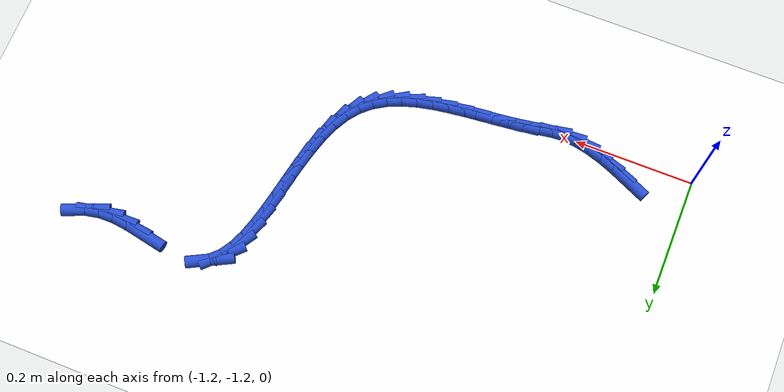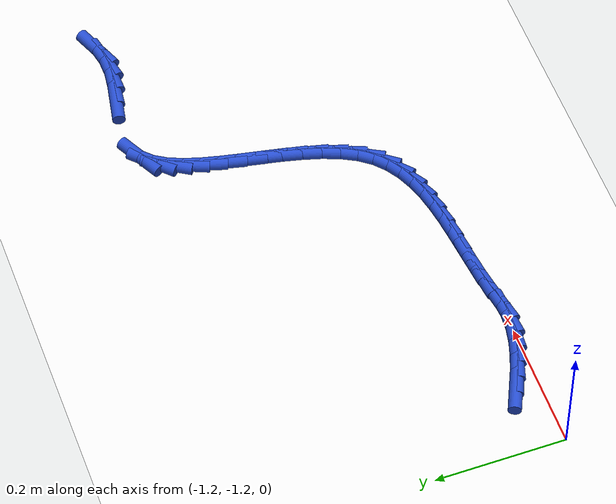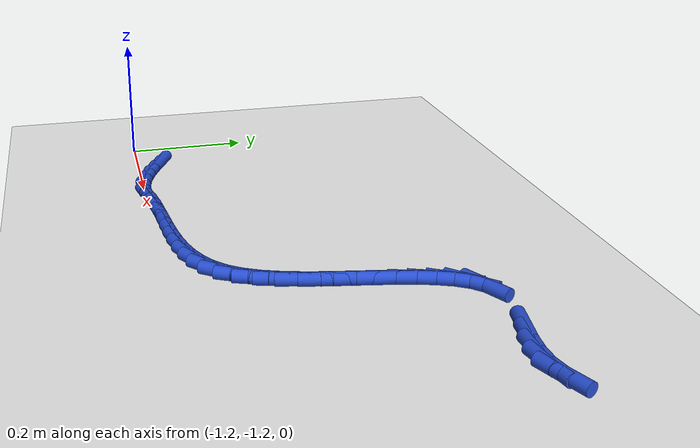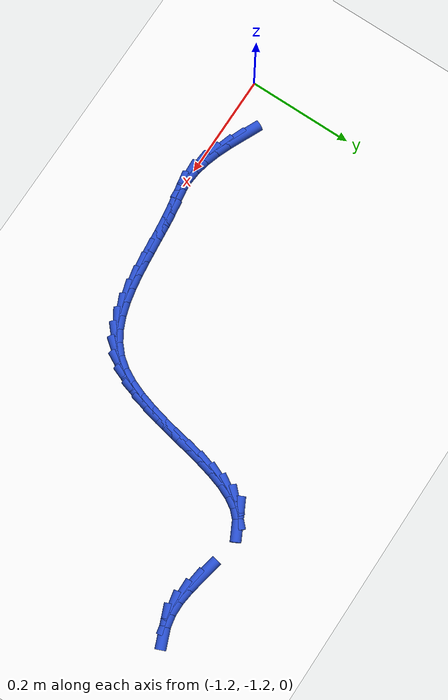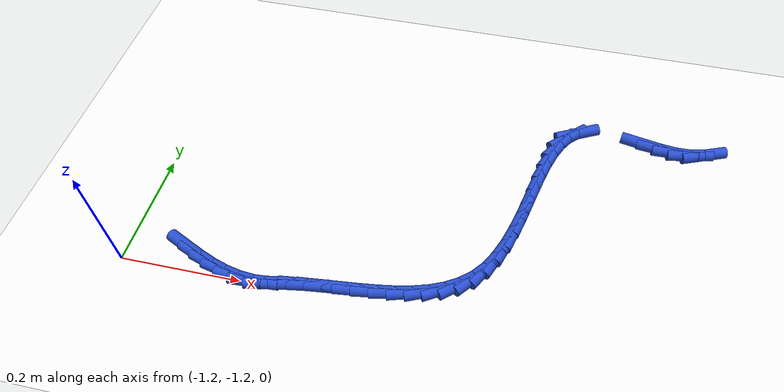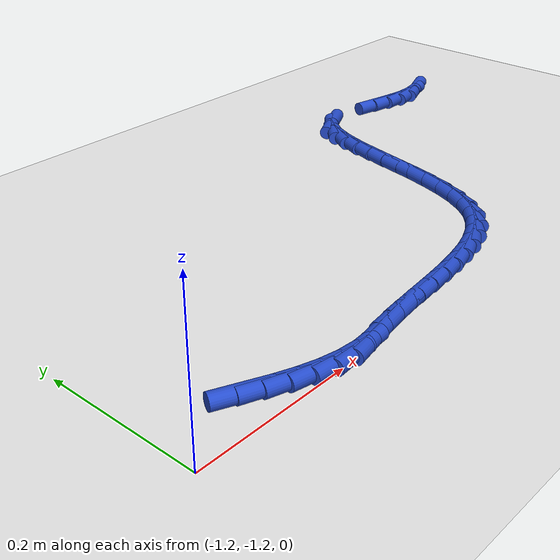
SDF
<sdf version="1.6">
 <world name="default">
  <model name="ground_plane">
   <static>1</static>
   <link name="link">
    <collision name="collision">
     <geometry><plane><normal>0 0 1</normal><size>100 100</size></plane></geometry>
     <surface><friction><ode><mu>100</mu><mu2>50</mu2></ode></friction></surface>
    </collision>
    <visual name="visual">
     <cast_shadows>0</cast_shadows>
     <geometry><plane><normal>0 0 1</normal><size>100 100</size></plane></geometry>
     <material>
      <script><uri>file://media/materials/scripts/gazebo.material</uri><name>Gazebo/WhiteGlow</name></script>
     </material>
    </visual>
   </link>
  </model>
  <model name="line">
   <link name="link_218">
    <pose>-1.098816212058222 -1.1635017872347682 0.01 0 1.57 -0.4315444248721359</pose>
    <collision name="collision">
     <geometry><cylinder><radius>0.01</radius><length>0.08</length></cylinder></geometry>
    </collision>
    <visual name="visual">
     <material>
      <script><name>Gazebo/Blue</name><uri>file://media/materials/scripts/gazebo.material</uri></script>
     </material>
     <geometry><cylinder><radius>0.01</radius><length>0.08</length></cylinder></geometry>
    </visual>
   </link>
   <link name="link_219">
    <pose>-1.0742911238119166 -1.1747953848198356 0.01 0 1.57 -0.38162803061026823</pose>
    <collision name="collision">
     <geometry><cylinder><radius>0.01</radius><length>0.08</length></cylinder></geometry>
    </collision>
    <visual name="visual">
     <material>
      <script><name>Gazebo/Blue</name><uri>file://media/materials/scripts/gazebo.material</uri></script>
     </material>
     <geometry><cylinder><radius>0.01</radius><length>0.08</length></cylinder></geometry>
    </visual>
   </link>
   <link name="link_220">
    <pose>-1.0497254532334863 -1.1846536302491382 0.01 0 1.57 -0.3078848783195004</pose>
    <collision name="collision">
     <geometry><cylinder><radius>0.01</radius><length>0.08</length></cylinder></geometry>
    </collision>
    <visual name="visual">
     <material>
      <script><name>Gazebo/Blue</name><uri>file://media/materials/scripts/gazebo.material</uri></script>
     </material>
     <geometry><cylinder><radius>0.01</radius><length>0.08</length></cylinder></geometry>
    </visual>
   </link>
   <link name="link_221">
    <pose>-1.0250597635346874 -1.1924972437741892 0.01 0 1.57 -0.2083969248805636</pose>
    <collision name="collision">
     <geometry><cylinder><radius>0.01</radius><length>0.08</length></cylinder></geometry>
    </collision>
    <visual name="visual">
     <material>
      <script><name>Gazebo/Blue</name><uri>file://media/materials/scripts/gazebo.material</uri></script>
     </material>
     <geometry><cylinder><radius>0.01</radius><length>0.08</length></cylinder></geometry>
    </visual>
   </link>
   <link name="link_222">
    <pose>-1.0002346179272763 -1.1977469456465017 0.01 0 1.57 -0.08272513613194435</pose>
    <collision name="collision">
     <geometry><cylinder><radius>0.01</radius><length>0.08</length></cylinder></geometry>
    </collision>
    <visual name="visual">
     <material>
      <script><name>Gazebo/Blue</name><uri>file://media/materials/scripts/gazebo.material</uri></script>
     </material>
     <geometry><cylinder><radius>0.01</radius><length>0.08</length></cylinder></geometry>
    </visual>
   </link>
   <link name="link_223">
    <pose>-0.9751905796230091 -1.1998234561175882 0.01 0 1.57 0.0660886039021946</pose>
    <collision name="collision">
     <geometry><cylinder><radius>0.01</radius><length>0.08</length></cylinder></geometry>
    </collision>
    <visual name="visual">
     <material>
      <script><name>Gazebo/Blue</name><uri>file://media/materials/scripts/gazebo.material</uri></script>
     </material>
     <geometry><cylinder><radius>0.01</radius><length>0.08</length></cylinder></geometry>
    </visual>
   </link>
   <link name="link_224">
    <pose>-0.9498682118336421 -1.198147495438962 0.01 0 1.57 0.18501400527043615</pose>
    <collision name="collision">
     <geometry><cylinder><radius>0.01</radius><length>0.08</length></cylinder></geometry>
    </collision>
    <visual name="visual">
     <material>
      <script><name>Gazebo/Blue</name><uri>file://media/materials/scripts/gazebo.material</uri></script>
     </material>
     <geometry><cylinder><radius>0.01</radius><length>0.08</length></cylinder></geometry>
    </visual>
   </link>
   <link name="link_225">
    <pose>-0.9240349536873695 -1.193312689146798 0.01 0 1.57 0.15475786522528964</pose>
    <collision name="collision">
     <geometry><cylinder><radius>0.01</radius><length>0.08</length></cylinder></geometry>
    </collision>
    <visual name="visual">
     <material>
      <script><name>Gazebo/Blue</name><uri>file://media/materials/scripts/gazebo.material</uri></script>
     </material>
     <geometry><cylinder><radius>0.01</radius><length>0.08</length></cylinder></geometry>
    </visual>
   </link>
   <link name="link_226">
    <pose>-0.8971002868756933 -1.189110738357532 0.01 0 1.57 0.11705539240426004</pose>
    <collision name="collision">
     <geometry><cylinder><radius>0.01</radius><length>0.08</length></cylinder></geometry>
    </collision>
    <visual name="visual">
     <material>
      <script><name>Gazebo/Blue</name><uri>file://media/materials/scripts/gazebo.material</uri></script>
     </material>
     <geometry><cylinder><radius>0.01</radius><length>0.08</length></cylinder></geometry>
    </visual>
   </link>
   <link name="link_227">
    <pose>-0.8692866613388929 -1.1858400515641836 0.01 0 1.57 0.09915759661996276</pose>
    <collision name="collision">
     <geometry><cylinder><radius>0.01</radius><length>0.08</length></cylinder></geometry>
    </collision>
    <visual name="visual">
     <material>
      <script><name>Gazebo/Blue</name><uri>file://media/materials/scripts/gazebo.material</uri></script>
     </material>
     <geometry><cylinder><radius>0.01</radius><length>0.08</length></cylinder></geometry>
    </visual>
   </link>
   <link name="link_228">
    <pose>-0.84097839155298 -1.1830238356187113 0.01 0 1.57 0.09955292335106708</pose>
    <collision name="collision">
     <geometry><cylinder><radius>0.01</radius><length>0.08</length></cylinder></geometry>
    </collision>
    <visual name="visual">
     <material>
      <script><name>Gazebo/Blue</name><uri>file://media/materials/scripts/gazebo.material</uri></script>
     </material>
     <geometry><cylinder><radius>0.01</radius><length>0.08</length></cylinder></geometry>
    </visual>
   </link>
   <link name="link_229">
    <pose>-0.8125597919939674 -1.1801852973730735 0.01 0 1.57 0.11803814381828012</pose>
    <collision name="collision">
     <geometry><cylinder><radius>0.01</radius><length>0.08</length></cylinder></geometry>
    </collision>
    <visual name="visual">
     <material>
      <script><name>Gazebo/Blue</name><uri>file://media/materials/scripts/gazebo.material</uri></script>
     </material>
     <geometry><cylinder><radius>0.01</radius><length>0.08</length></cylinder></geometry>
    </visual>
   </link>
   <link name="link_230">
    <pose>-0.7844151771378685 -1.1768476436792297 0.01 0 1.57 0.15566525242233029</pose>
    <collision name="collision">
     <geometry><cylinder><radius>0.01</radius><length>0.08</length></cylinder></geometry>
    </collision>
    <visual name="visual">
     <material>
      <script><name>Gazebo/Blue</name><uri>file://media/materials/scripts/gazebo.material</uri></script>
     </material>
     <geometry><cylinder><radius>0.01</radius><length>0.08</length></cylinder></geometry>
    </visual>
   </link>
   <link name="link_231">
    <pose>-0.7569288614606956 -1.1725340813891378 0.01 0 1.57 0.21469732313783532</pose>
    <collision name="collision">
     <geometry><cylinder><radius>0.01</radius><length>0.08</length></cylinder></geometry>
    </collision>
    <visual name="visual">
     <material>
      <script><name>Gazebo/Blue</name><uri>file://media/materials/scripts/gazebo.material</uri></script>
     </material>
     <geometry><cylinder><radius>0.01</radius><length>0.08</length></cylinder></geometry>
    </visual>
   </link>
   <link name="link_232">
    <pose>-0.7304851594384619 -1.1667678173547578 0.01 0 1.57 0.2984364893125805</pose>
    <collision name="collision">
     <geometry><cylinder><radius>0.01</radius><length>0.08</length></cylinder></geometry>
    </collision>
    <visual name="visual">
     <material>
      <script><name>Gazebo/Blue</name><uri>file://media/materials/scripts/gazebo.material</uri></script>
     </material>
     <geometry><cylinder><radius>0.01</radius><length>0.08</length></cylinder></geometry>
    </visual>
   </link>
   <link name="link_233">
    <pose>-0.7054683855471805 -1.159072058428047 0.01 0 1.57 0.4105869993699144</pose>
    <collision name="collision">
     <geometry><cylinder><radius>0.01</radius><length>0.08</length></cylinder></geometry>
    </collision>
    <visual name="visual">
     <material>
      <script><name>Gazebo/Blue</name><uri>file://media/materials/scripts/gazebo.material</uri></script>
     </material>
     <geometry><cylinder><radius>0.01</radius><length>0.08</length></cylinder></geometry>
    </visual>
   </link>
   <link name="link_234">
    <pose>-0.6822628542628628 -1.1489700114609647 0.01 0 1.57 0.5535829690011581</pose>
    <collision name="collision">
     <geometry><cylinder><radius>0.01</radius><length>0.08</length></cylinder></geometry>
    </collision>
    <visual name="visual">
     <material>
      <script><name>Gazebo/Blue</name><uri>file://media/materials/scripts/gazebo.material</uri></script>
     </material>
     <geometry><cylinder><radius>0.01</radius><length>0.08</length></cylinder></geometry>
    </visual>
   </link>
   <link name="link_235">
    <pose>-0.6612528800615219 -1.1359848833054695 0.01 0 1.57 0.7255102990827947</pose>
    <collision name="collision">
     <geometry><cylinder><radius>0.01</radius><length>0.08</length></cylinder></geometry>
    </collision>
    <visual name="visual">
     <material>
      <script><name>Gazebo/Blue</name><uri>file://media/materials/scripts/gazebo.material</uri></script>
     </material>
     <geometry><cylinder><radius>0.01</radius><length>0.08</length></cylinder></geometry>
    </visual>
   </link>
   <link name="link_236">
    <pose>-0.6428227774191717 -1.1196398808135206 0.01 0 1.57 0.9152244640991074</pose>
    <collision name="collision">
     <geometry><cylinder><radius>0.01</radius><length>0.08</length></cylinder></geometry>
    </collision>
    <visual name="visual">
     <material>
      <script><name>Gazebo/Blue</name><uri>file://media/materials/scripts/gazebo.material</uri></script>
     </material>
     <geometry><cylinder><radius>0.01</radius><length>0.08</length></cylinder></geometry>
    </visual>
   </link>
   <link name="link_237">
    <pose>-0.6273303858108608 -1.0994946131046823 0.01 0 1.57 1.081231099242293</pose>
    <collision name="collision">
     <geometry><cylinder><radius>0.01</radius><length>0.08</length></cylinder></geometry>
    </collision>
    <visual name="visual">
     <material>
      <script><name>Gazebo/Blue</name><uri>file://media/materials/scripts/gazebo.material</uri></script>
     </material>
     <geometry><cylinder><radius>0.01</radius><length>0.08</length></cylinder></geometry>
    </visual>
   </link>
   <link name="link_238">
    <pose>-0.6146737183588135 -1.075740935619159 0.01 0 1.57 1.2013816341600048</pose>
    <collision name="collision">
     <geometry><cylinder><radius>0.01</radius><length>0.08</length></cylinder></geometry>
    </collision>
    <visual name="visual">
     <material>
      <script><name>Gazebo/Blue</name><uri>file://media/materials/scripts/gazebo.material</uri></script>
     </material>
     <geometry><cylinder><radius>0.01</radius><length>0.08</length></cylinder></geometry>
    </visual>
   </link>
   <link name="link_239">
    <pose>-0.6043611243051689 -1.0491064789935 0.01 0 1.57 1.2844079481987751</pose>
    <collision name="collision">
     <geometry><cylinder><radius>0.01</radius><length>0.08</length></cylinder></geometry>
    </collision>
    <visual name="visual">
     <material>
      <script><name>Gazebo/Blue</name><uri>file://media/materials/scripts/gazebo.material</uri></script>
     </material>
     <geometry><cylinder><radius>0.01</radius><length>0.08</length></cylinder></geometry>
    </visual>
   </link>
   <link name="link_240">
    <pose>-0.5958886310758766 -1.0203358159618563 0.01 0 1.57 1.3384697240331906</pose>
    <collision name="collision">
     <geometry><cylinder><radius>0.01</radius><length>0.08</length></cylinder></geometry>
    </collision>
    <visual name="visual">
     <material>
      <script><name>Gazebo/Blue</name><uri>file://media/materials/scripts/gazebo.material</uri></script>
     </material>
     <geometry><cylinder><radius>0.01</radius><length>0.08</length></cylinder></geometry>
    </visual>
   </link>
   <link name="link_241">
    <pose>-0.5887522660968866 -0.9901735192583789 0.01 0 1.57 1.3689624771274504</pose>
    <collision name="collision">
     <geometry><cylinder><radius>0.01</radius><length>0.08</length></cylinder></geometry>
    </collision>
    <visual name="visual">
     <material>
      <script><name>Gazebo/Blue</name><uri>file://media/materials/scripts/gazebo.material</uri></script>
     </material>
     <geometry><cylinder><radius>0.01</radius><length>0.08</length></cylinder></geometry>
    </visual>
   </link>
   <link name="link_242">
    <pose>-0.582448056794148 -0.9593641616172188 0.01 0 1.57 1.378614080483908</pose>
    <collision name="collision">
     <geometry><cylinder><radius>0.01</radius><length>0.08</length></cylinder></geometry>
    </collision>
    <visual name="visual">
     <material>
      <script><name>Gazebo/Blue</name><uri>file://media/materials/scripts/gazebo.material</uri></script>
     </material>
     <geometry><cylinder><radius>0.01</radius><length>0.08</length></cylinder></geometry>
    </visual>
   </link>
   <link name="link_243">
    <pose>-0.5764720305936106 -0.9286523157725268 0.01 0 1.57 1.3676817714875846</pose>
    <collision name="collision">
     <geometry><cylinder><radius>0.01</radius><length>0.08</length></cylinder></geometry>
    </collision>
    <visual name="visual">
     <material>
      <script><name>Gazebo/Blue</name><uri>file://media/materials/scripts/gazebo.material</uri></script>
     </material>
     <geometry><cylinder><radius>0.01</radius><length>0.08</length></cylinder></geometry>
    </visual>
   </link>
   <link name="link_244">
    <pose>-0.5703202149212242 -0.8987825544584538 0.01 0 1.57 1.333793164133503</pose>
    <collision name="collision">
     <geometry><cylinder><radius>0.01</radius><length>0.08</length></cylinder></geometry>
    </collision>
    <visual name="visual">
     <material>
      <script><name>Gazebo/Blue</name><uri>file://media/materials/scripts/gazebo.material</uri></script>
     </material>
     <geometry><cylinder><radius>0.01</radius><length>0.08</length></cylinder></geometry>
    </visual>
   </link>
   <link name="link_245">
    <pose>-0.5634886372029384 -0.8704994504091512 0.01 0 1.57 1.2712374972557732</pose>
    <collision name="collision">
     <geometry><cylinder><radius>0.01</radius><length>0.08</length></cylinder></geometry>
    </collision>
    <visual name="visual">
     <material>
      <script><name>Gazebo/Blue</name><uri>file://media/materials/scripts/gazebo.material</uri></script>
     </material>
     <geometry><cylinder><radius>0.01</radius><length>0.08</length></cylinder></geometry>
    </visual>
   </link>
   <link name="link_246">
    <pose>-0.5554733248647028 -0.8445475763587699 0.01 0 1.57 1.1696408970695304</pose>
    <collision name="collision">
     <geometry><cylinder><radius>0.01</radius><length>0.08</length></cylinder></geometry>
    </collision>
    <visual name="visual">
     <material>
      <script><name>Gazebo/Blue</name><uri>file://media/materials/scripts/gazebo.material</uri></script>
     </material>
     <geometry><cylinder><radius>0.01</radius><length>0.08</length></cylinder></geometry>
    </visual>
   </link>
   <link name="link_247">
    <pose>-0.545770305332467 -0.8216715050414602 0.01 0 1.57 1.0127674407140301</pose>
    <collision name="collision">
     <geometry><cylinder><radius>0.01</radius><length>0.08</length></cylinder></geometry>
    </collision>
    <visual name="visual">
     <material>
      <script><name>Gazebo/Blue</name><uri>file://media/materials/scripts/gazebo.material</uri></script>
     </material>
     <geometry><cylinder><radius>0.01</radius><length>0.08</length></cylinder></geometry>
    </visual>
   </link>
   <link name="link_248">
    <pose>-0.5338756060321811 -0.8026158091913744 0.01 0 1.57 0.7819731345428496</pose>
    <collision name="collision">
     <geometry><cylinder><radius>0.01</radius><length>0.08</length></cylinder></geometry>
    </collision>
    <visual name="visual">
     <material>
      <script><name>Gazebo/Blue</name><uri>file://media/materials/scripts/gazebo.material</uri></script>
     </material>
     <geometry><cylinder><radius>0.01</radius><length>0.08</length></cylinder></geometry>
    </visual>
   </link>
   <link name="link_249">
    <pose>-0.5192852543897939 -0.7881250615426619 0.01 0 1.57 0.476436495689301</pose>
    <collision name="collision">
     <geometry><cylinder><radius>0.01</radius><length>0.08</length></cylinder></geometry>
    </collision>
    <visual name="visual">
     <material>
      <script><name>Gazebo/Blue</name><uri>file://media/materials/scripts/gazebo.material</uri></script>
     </material>
     <geometry><cylinder><radius>0.01</radius><length>0.08</length></cylinder></geometry>
    </visual>
   </link>
   <link name="link_254">
    <pose>-0.40150492281986855 -0.7876373576510618 0.01 0 1.57 -0.1959891711359255</pose>
    <collision name="collision">
     <geometry><cylinder><radius>0.01</radius><length>0.08</length></cylinder></geometry>
    </collision>
    <visual name="visual">
     <material>
      <script><name>Gazebo/Blue</name><uri>file://media/materials/scripts/gazebo.material</uri></script>
     </material>
     <geometry><cylinder><radius>0.01</radius><length>0.08</length></cylinder></geometry>
    </visual>
   </link>
   <link name="link_255">
    <pose>-0.37365979588014164 -0.793165666949535 0.01 0 1.57 -0.12413736637425951</pose>
    <collision name="collision">
     <geometry><cylinder><radius>0.01</radius><length>0.08</length></cylinder></geometry>
    </collision>
    <visual name="visual">
     <material>
      <script><name>Gazebo/Blue</name><uri>file://media/materials/scripts/gazebo.material</uri></script>
     </material>
     <geometry><cylinder><radius>0.01</radius><length>0.08</length></cylinder></geometry>
    </visual>
   </link>
   <link name="link_256">
    <pose>-0.3465915639233866 -0.7965432132530277 0.01 0 1.57 0.01685098706409643</pose>
    <collision name="collision">
     <geometry><cylinder><radius>0.01</radius><length>0.08</length></cylinder></geometry>
    </collision>
    <visual name="visual">
     <material>
      <script><name>Gazebo/Blue</name><uri>file://media/materials/scripts/gazebo.material</uri></script>
     </material>
     <geometry><cylinder><radius>0.01</radius><length>0.08</length></cylinder></geometry>
    </visual>
   </link>
   <link name="link_257">
    <pose>-0.3212102191325643 -0.7961154720529952 0.01 0 1.57 0.19894254156949281</pose>
    <collision name="collision">
     <geometry><cylinder><radius>0.01</radius><length>0.08</length></cylinder></geometry>
    </collision>
    <visual name="visual">
     <material>
      <script><name>Gazebo/Blue</name><uri>file://media/materials/scripts/gazebo.material</uri></script>
     </material>
     <geometry><cylinder><radius>0.01</radius><length>0.08</length></cylinder></geometry>
    </visual>
   </link>
   <link name="link_258">
    <pose>-0.297814217254059 -0.7913986190829762 0.01 0 1.57 0.38332316593328875</pose>
    <collision name="collision">
     <geometry><cylinder><radius>0.01</radius><length>0.08</length></cylinder></geometry>
    </collision>
    <visual name="visual">
     <material>
      <script><name>Gazebo/Blue</name><uri>file://media/materials/scripts/gazebo.material</uri></script>
     </material>
     <geometry><cylinder><radius>0.01</radius><length>0.08</length></cylinder></geometry>
    </visual>
   </link>
  </model>
 </world>
</sdf>
